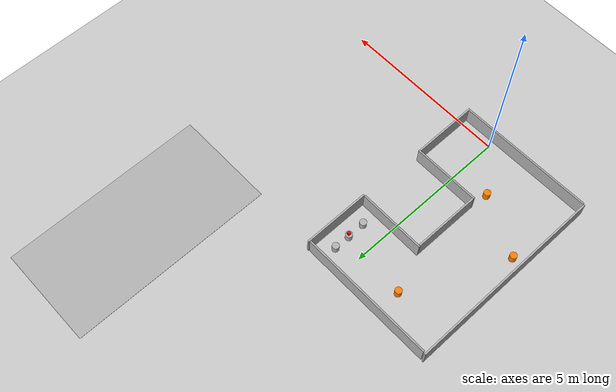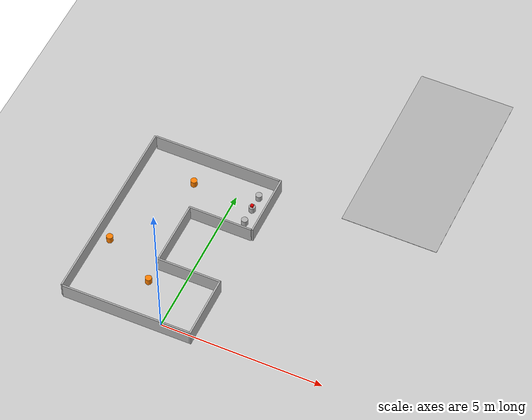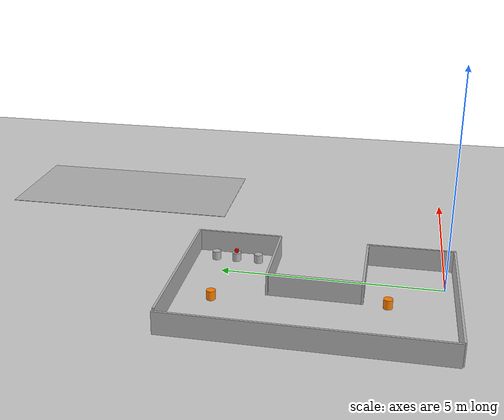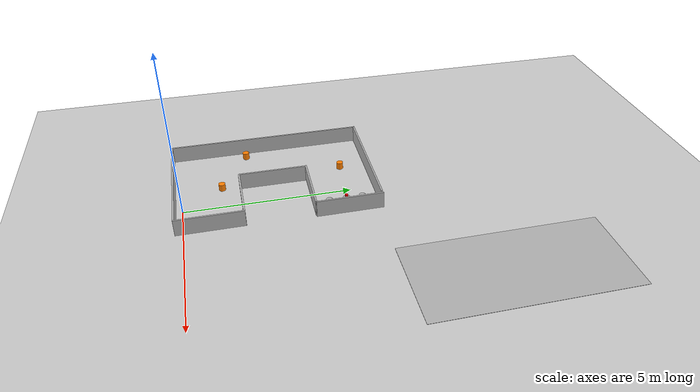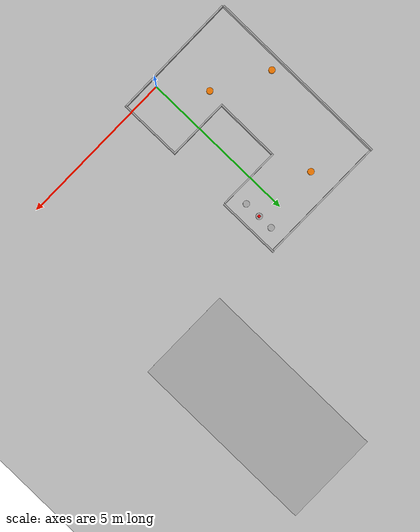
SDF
<sdf version='1.9'>
  <world name='report2_simulator'>
    <physics name='1ms' type='ignored'>
      <max_step_size>0.001</max_step_size>
      <real_time_factor>1</real_time_factor>
      <real_time_update_rate>1000</real_time_update_rate>
    </physics>
    <gravity>0 0 -9.8</gravity>
    <magnetic_field>6e-06 2.3e-05 -4.2e-05</magnetic_field>
    <atmosphere type='adiabatic'/>
    <scene>
      <ambient>0.4 0.4 0.4 1</ambient>
      <background>0.7 0.7 0.7 1</background>
      <shadows>true</shadows>
    </scene>
    <model name='ground_plane'>
      <static>true</static>
      <link name='link'>
        <collision name='collision'>
          <geometry>
            <plane>
              <normal>0 0 1</normal>
              <size>100 100</size>
            </plane>
          </geometry>
          <surface>
            <friction>
              <ode/>
            </friction>
            <bounce/>
            <contact/>
          </surface>
        </collision>
        <visual name='visual'>
          <geometry>
            <plane>
              <normal>0 0 1</normal>
              <size>15 15</size>
            </plane>
          </geometry>
          <material>
            <diffuse>0.8 0.8 0.8 1</diffuse>
            <pbr>
              <metal>
                <albedo_map>model://ground.png</albedo_map>
              </metal>
            </pbr>
          </material>
        </visual>
        <pose>0 5 0 0 -0 0</pose>
        <inertial>
          <pose>0 0 0 0 -0 0</pose>
          <mass>1</mass>
          <inertia>
            <ixx>1</ixx>
            <ixy>0</ixy>
            <ixz>0</ixz>
            <iyy>1</iyy>
            <iyz>0</iyz>
            <izz>1</izz>
          </inertia>
        </inertial>
        <enable_wind>false</enable_wind>
      </link>
      <pose>0 0 0 0 -0 0</pose>
      <self_collide>false</self_collide>
    </model>
    <model name='box'>
      <static>true</static>
      <pose>-0.920266 2.76416 0 0 -0 1.56766</pose>
      <link name='box_link'>
        <inertial>
          <inertia>
            <ixx>0.16666</ixx>
            <ixy>0</ixy>
            <ixz>0</ixz>
            <iyy>0.16666</iyy>
            <iyz>0</iyz>
            <izz>0.16666</izz>
          </inertia>
          <mass>1</mass>
          <pose>0 0 0 0 -0 0</pose>
        </inertial>
        <collision name='box_collision'>
          <geometry>
            <box>
              <size>2 0.05 1</size>
            </box>
          </geometry>
          <surface>
            <friction>
              <ode/>
            </friction>
            <bounce/>
            <contact/>
          </surface>
        </collision>
        <visual name='box_visual'>
          <geometry>
            <box>
              <size>2 0.05 1</size>
            </box>
          </geometry>
          <material>
            <ambient>0.3 0.3 0.3 1</ambient>
            <diffuse>0.7 0.7 0.7 1</diffuse>
            <specular>1 1 1 1</specular>
          </material>
        </visual>
        <pose>0 0 0 0 -0 0</pose>
        <enable_wind>false</enable_wind>
      </link>
      <static>false</static>
      <self_collide>false</self_collide>
    </model>
    <model name='box_0'>
      <static>true</static>
      <pose>0.054507 3.79134 0 0 0 -0.005035</pose>
      <link name='box_link'>
        <inertial>
          <inertia>
            <ixx>0.16666</ixx>
            <ixy>0</ixy>
            <ixz>0</ixz>
            <iyy>0.16666</iyy>
            <iyz>0</iyz>
            <izz>0.16666</izz>
          </inertia>
          <mass>1</mass>
          <pose>0 0 0 0 -0 0</pose>
        </inertial>
        <collision name='box_collision'>
          <geometry>
            <box>
              <size>2 0.05 1</size>
            </box>
          </geometry>
          <surface>
            <friction>
              <ode/>
            </friction>
            <bounce/>
            <contact/>
          </surface>
        </collision>
        <visual name='box_visual'>
          <geometry>
            <box>
              <size>2 0.05 1</size>
            </box>
          </geometry>
          <material>
            <ambient>0.3 0.3 0.3 1</ambient>
            <diffuse>0.7 0.7 0.7 1</diffuse>
            <specular>1 1 1 1</specular>
          </material>
        </visual>
        <pose>0 0 0 0 -0 0</pose>
        <enable_wind>false</enable_wind>
      </link>
      <static>false</static>
      <self_collide>false</self_collide>
    </model>
    <model name='box_1'>
      <static>true</static>
      <pose>-3.01677 2.77294 0 0 -0 1.56994</pose>
      <link name='box_link'>
        <inertial>
          <inertia>
            <ixx>0.16666</ixx>
            <ixy>0</ixy>
            <ixz>0</ixz>
            <iyy>0.16666</iyy>
            <iyz>0</iyz>
            <izz>0.16666</izz>
          </inertia>
          <mass>1</mass>
          <pose>0 0 0 0 -0 0</pose>
        </inertial>
        <collision name='box_collision'>
          <geometry>
            <box>
              <size>6 0.05 1</size>
            </box>
          </geometry>
          <surface>
            <friction>
              <ode/>
            </friction>
            <bounce/>
            <contact/>
          </surface>
        </collision>
        <visual name='box_visual'>
          <geometry>
            <box>
              <size>6 0.05 1</size>
            </box>
          </geometry>
          <material>
            <ambient>0.3 0.3 0.3 1</ambient>
            <diffuse>0.7 0.7 0.7 1</diffuse>
            <specular>1 1 1 1</specular>
          </material>
        </visual>
        <pose>0 0 0 0 -0 0</pose>
        <enable_wind>false</enable_wind>
      </link>
      <static>false</static>
      <self_collide>false</self_collide>
    </model>
    <model name='box_2'>
      <static>true</static>
      <pose>0.053346 1.73939 0 0 -0 0.000557</pose>
      <link name='box_link'>
        <inertial>
          <inertia>
            <ixx>0.16666</ixx>
            <ixy>0</ixy>
            <ixz>0</ixz>
            <iyy>0.16666</iyy>
            <iyz>0</iyz>
            <izz>0.16666</izz>
          </inertia>
          <mass>1</mass>
          <pose>0 0 0 0 -0 0</pose>
        </inertial>
        <collision name='box_collision'>
          <geometry>
            <box>
              <size>2 0.05 1</size>
            </box>
          </geometry>
          <surface>
            <friction>
              <ode/>
            </friction>
            <bounce/>
            <contact/>
          </surface>
        </collision>
        <visual name='box_visual'>
          <geometry>
            <box>
              <size>2 0.05 1</size>
            </box>
          </geometry>
          <material>
            <ambient>0.3 0.3 0.3 1</ambient>
            <diffuse>0.7 0.7 0.7 1</diffuse>
            <specular>1 1 1 1</specular>
          </material>
        </visual>
        <pose>0 0 0 0 -0 0</pose>
        <enable_wind>false</enable_wind>
      </link>
      <static>false</static>
      <self_collide>false</self_collide>
    </model>
    <model name='box_3'>
      <static>true</static>
      <pose>-0.989402 -0.226338 0 0 -0 0.005638</pose>
      <link name='box_link'>
        <inertial>
          <inertia>
            <ixx>0.16666</ixx>
            <ixy>0</ixy>
            <ixz>0</ixz>
            <iyy>0.16666</iyy>
            <iyz>0</iyz>
            <izz>0.16666</izz>
          </inertia>
          <mass>1</mass>
          <pose>0 0 0 0 -0 0</pose>
        </inertial>
        <collision name='box_collision'>
          <geometry>
            <box>
              <size>4 0.05 1</size>
            </box>
          </geometry>
          <surface>
            <friction>
              <ode/>
            </friction>
            <bounce/>
            <contact/>
          </surface>
        </collision>
        <visual name='box_visual'>
          <geometry>
            <box>
              <size>4 0.05 1</size>
            </box>
          </geometry>
          <material>
            <ambient>0.3 0.3 0.3 1</ambient>
            <diffuse>0.7 0.7 0.7 1</diffuse>
            <specular>1 1 1 1</specular>
          </material>
        </visual>
        <pose>0 0 0 0 -0 0</pose>
        <enable_wind>false</enable_wind>
      </link>
      <static>false</static>
      <self_collide>false</self_collide>
    </model>
    <model name='box_4'>
      <static>true</static>
      <pose>-0.954706 5.74291 0.032371 -0.004997 -0.001703 -3.14055</pose>
      <link name='box_link'>
        <inertial>
          <inertia>
            <ixx>0.16666</ixx>
            <ixy>0</ixy>
            <ixz>0</ixz>
            <iyy>0.16666</iyy>
            <iyz>0</iyz>
            <izz>0.16666</izz>
          </inertia>
          <mass>1</mass>
          <pose>0 0 0 0 -0 0</pose>
        </inertial>
        <collision name='box_collision'>
          <geometry>
            <box>
              <size>4 0.05 1</size>
            </box>
          </geometry>
          <surface>
            <friction>
              <ode/>
            </friction>
            <bounce/>
            <contact/>
          </surface>
        </collision>
        <visual name='box_visual'>
          <geometry>
            <box>
              <size>4 0.05 1</size>
            </box>
          </geometry>
          <material>
            <ambient>0.3 0.3 0.3 1</ambient>
            <diffuse>0.7 0.7 0.7 1</diffuse>
            <specular>1 1 1 1</specular>
          </material>
        </visual>
        <pose>0 0 0 0 -0 0</pose>
        <enable_wind>false</enable_wind>
      </link>
      <static>false</static>
      <self_collide>false</self_collide>
    </model>
    <model name='box_5'>
      <static>true</static>
      <pose>1.0853 4.78664 0 0 -0 1.57301</pose>
      <link name='box_link'>
        <inertial>
          <inertia>
            <ixx>0.16666</ixx>
            <ixy>0</ixy>
            <ixz>0</ixz>
            <iyy>0.16666</iyy>
            <iyz>0</iyz>
            <izz>0.16666</izz>
          </inertia>
          <mass>1</mass>
          <pose>0 0 0 0 -0 0</pose>
        </inertial>
        <collision name='box_collision'>
          <geometry>
            <box>
              <size>2 0.05 1</size>
            </box>
          </geometry>
          <surface>
            <friction>
              <ode/>
            </friction>
            <bounce/>
            <contact/>
          </surface>
        </collision>
        <visual name='box_visual'>
          <geometry>
            <box>
              <size>2 0.05 1</size>
            </box>
          </geometry>
          <material>
            <ambient>0.3 0.3 0.3 1</ambient>
            <diffuse>0.7 0.7 0.7 1</diffuse>
            <specular>1 1 1 1</specular>
          </material>
        </visual>
        <pose>0 0 0 0 -0 0</pose>
        <enable_wind>false</enable_wind>
      </link>
      <static>false</static>
      <self_collide>false</self_collide>
    </model>
    <model name='box_6'>
      <static>true</static>
      <pose>1.03218 0.757696 0 0 0 -1.56731</pose>
      <link name='box_link'>
        <inertial>
          <inertia>
            <ixx>0.16666</ixx>
            <ixy>0</ixy>
            <ixz>0</ixz>
            <iyy>0.16666</iyy>
            <iyz>0</iyz>
            <izz>0.16666</izz>
          </inertia>
          <mass>1</mass>
          <pose>0 0 0 0 -0 0</pose>
        </inertial>
        <collision name='box_collision'>
          <geometry>
            <box>
              <size>2 0.05 1</size>
            </box>
          </geometry>
          <surface>
            <friction>
              <ode/>
            </friction>
            <bounce/>
            <contact/>
          </surface>
        </collision>
        <visual name='box_visual'>
          <geometry>
            <box>
              <size>2 0.05 1</size>
            </box>
          </geometry>
          <material>
            <ambient>0.3 0.3 0.3 1</ambient>
            <diffuse>0.7 0.7 0.7 1</diffuse>
            <specular>1 1 1 1</specular>
          </material>
        </visual>
        <pose>0 0 0 0 -0 0</pose>
        <enable_wind>false</enable_wind>
      </link>
      <static>false</static>
      <self_collide>false</self_collide>
    </model>
    <model name='cylinder'>
      <static>true</static>
      <pose>0.618932 5.24233 0.1 0 -0 0</pose>
      <link name='cylinder_link'>
        <inertial>
          <inertia>
            <ixx>0.14580000000000001</ixx>
            <ixy>0</ixy>
            <ixz>0</ixz>
            <iyy>0.14580000000000001</iyy>
            <iyz>0</iyz>
            <izz>0.125</izz>
          </inertia>
          <mass>1</mass>
          <pose>0 0 0 0 -0 0</pose>
        </inertial>
        <collision name='cylinder_collision'>
          <geometry>
            <cylinder>
              <radius>0.10000000000000001</radius>
              <length>0.20000000000000001</length>
            </cylinder>
          </geometry>
          <surface>
            <friction>
              <ode/>
            </friction>
            <bounce/>
            <contact/>
          </surface>
        </collision>
        <visual name='cylinder_visual'>
          <geometry>
            <cylinder>
              <radius>0.10000000000000001</radius>
              <length>0.20000000000000001</length>
            </cylinder>
          </geometry>
          <material>
            <ambient>0.3 0.3 0.3 1</ambient>
            <diffuse>0.7 0.7 0.7 1</diffuse>
            <specular>1 1 1 1</specular>
          </material>
        </visual>
        <pose>0 0 0 0 -0 0</pose>
        <enable_wind>false</enable_wind>
      </link>
      <self_collide>false</self_collide>
    </model>
    <model name='cylinder_0'>
      <static>true</static>
      <pose>0.621926 4.7638 0.1 0 -0 0</pose>
      <link name='cylinder_link'>
        <inertial>
          <inertia>
            <ixx>0.14580000000000001</ixx>
            <ixy>0</ixy>
            <ixz>0</ixz>
            <iyy>0.14580000000000001</iyy>
            <iyz>0</iyz>
            <izz>0.125</izz>
          </inertia>
          <mass>1</mass>
          <pose>0 0 0 0 -0 0</pose>
        </inertial>
        <collision name='cylinder_collision'>
          <geometry>
            <cylinder>
              <radius>0.10000000000000001</radius>
              <length>0.20000000000000001</length>
            </cylinder>
          </geometry>
          <surface>
            <friction>
              <ode/>
            </friction>
            <bounce/>
            <contact/>
          </surface>
        </collision>
        <visual name='cylinder_visual'>
          <geometry>
            <cylinder>
              <radius>0.10000000000000001</radius>
              <length>0.20000000000000001</length>
            </cylinder>
          </geometry>
          <material>
            <ambient>0.3 0.3 0.3 1</ambient>
            <diffuse>0.7 0.7 0.7 1</diffuse>
            <specular>1 1 1 1</specular>
          </material>
        </visual>
        <pose>0 0 0 0 -0 0</pose>
        <enable_wind>false</enable_wind>
      </link>
      <self_collide>false</self_collide>
    </model>
    <model name='cylinder_1'>
      <static>true</static>
      <pose>0.624562 4.24332 0.1 0 -0 0</pose>
      <link name='cylinder_link'>
        <inertial>
          <inertia>
            <ixx>0.14580000000000001</ixx>
            <ixy>0</ixy>
            <ixz>0</ixz>
            <iyy>0.14580000000000001</iyy>
            <iyz>0</iyz>
            <izz>0.125</izz>
          </inertia>
          <mass>1</mass>
          <pose>0 0 0 0 -0 0</pose>
        </inertial>
        <collision name='cylinder_collision'>
          <geometry>
            <cylinder>
              <radius>0.10000000000000001</radius>
              <length>0.20000000000000001</length>
            </cylinder>
          </geometry>
          <surface>
            <friction>
              <ode/>
            </friction>
            <bounce/>
            <contact/>
          </surface>
        </collision>
        <visual name='cylinder_visual'>
          <geometry>
            <cylinder>
              <radius>0.10000000000000001</radius>
              <length>0.20000000000000001</length>
            </cylinder>
          </geometry>
          <material>
            <ambient>0.3 0.3 0.3 1</ambient>
            <diffuse>0.7 0.7 0.7 1</diffuse>
            <specular>1 1 1 1</specular>
          </material>
        </visual>
        <pose>0 0 0 0 -0 0</pose>
        <enable_wind>false</enable_wind>
      </link>
      <self_collide>false</self_collide>
    </model>
    <model name='target'>
      <pose>0.624483 4.7639 0.24 0 -0 0</pose>
      <link name='box_link'>
        <inertial>
          <inertia>
            <ixx>0.16666</ixx>
            <ixy>0</ixy>
            <ixz>0</ixz>
            <iyy>0.16666</iyy>
            <iyz>0</iyz>
            <izz>0.16666</izz>
          </inertia>
          <mass>1</mass>
          <pose>0 0 0 0 -0 0</pose>
        </inertial>
        <collision name='box_collision'>
          <geometry>
            <box>
              <size>0.08 0.08 0.08</size>
            </box>
          </geometry>
          <surface>
            <friction>
              <ode/>
            </friction>
            <bounce/>
            <contact/>
          </surface>
        </collision>
        <visual name='box_visual'>
          <geometry>
            <box>
              <size>0.08 0.08 0.08</size>
            </box>
          </geometry>
          <material>
            <ambient>1 0 0 1</ambient>
            <diffuse>1 0 0 1</diffuse>
            <specular>1 1 1 1</specular>
          </material>
        </visual>
        <pose>0 0 0 0 -0 0</pose>
        <enable_wind>false</enable_wind>
      </link>
      <static>false</static>
      <self_collide>false</self_collide>
    </model>
    <model name='obstable_1'>
      <pose>-1.35172 4.93712 0 0 -0 0</pose>
      <link name='cylinder_link'>
        <inertial>
          <inertia>
            <ixx>0.14580000000000001</ixx>
            <ixy>0</ixy>
            <ixz>0</ixz>
            <iyy>0.14580000000000001</iyy>
            <iyz>0</iyz>
            <izz>0.125</izz>
          </inertia>
          <mass>1</mass>
          <pose>0 0 0 0 -0 0</pose>
        </inertial>
        <collision name='cylinder_collision'>
          <geometry>
            <cylinder>
              <radius>0.10000000000000001</radius>
              <length>0.40000000000000002</length>
            </cylinder>
          </geometry>
          <surface>
            <friction>
              <ode/>
            </friction>
            <bounce/>
            <contact/>
          </surface>
        </collision>
        <visual name='cylinder_visual'>
          <geometry>
            <cylinder>
              <radius>0.10000000000000001</radius>
              <length>0.40000000000000002</length>
            </cylinder>
          </geometry>
          <material>
            <ambient>1 0.5 0 1</ambient>
            <diffuse>1 0.5 0 1</diffuse>
            <specular>1 1 1 1</specular>
          </material>
        </visual>
        <pose>0 0 0 0 -0 0</pose>
        <enable_wind>false</enable_wind>
      </link>
      <static>false</static>
      <self_collide>false</self_collide>
    </model>
    <model name='obstable_2'>
      <pose>-2.67614 2.07183 0 0 -0 0</pose>
      <link name='cylinder_link'>
        <inertial>
          <inertia>
            <ixx>0.14580000000000001</ixx>
            <ixy>0</ixy>
            <ixz>0</ixz>
            <iyy>0.14580000000000001</iyy>
            <iyz>0</iyz>
            <izz>0.125</izz>
          </inertia>
          <mass>1</mass>
          <pose>0 0 0 0 -0 0</pose>
        </inertial>
        <collision name='cylinder_collision'>
          <geometry>
            <cylinder>
              <radius>0.10000000000000001</radius>
              <length>0.40000000000000002</length>
            </cylinder>
          </geometry>
          <surface>
            <friction>
              <ode/>
            </friction>
            <bounce/>
            <contact/>
          </surface>
        </collision>
        <visual name='cylinder_visual'>
          <geometry>
            <cylinder>
              <radius>0.10000000000000001</radius>
              <length>0.40000000000000002</length>
            </cylinder>
          </geometry>
          <material>
            <ambient>1 0.5 0 1</ambient>
            <diffuse>1 0.5 0 1</diffuse>
            <specular>1 1 1 1</specular>
          </material>
        </visual>
        <pose>0 0 0 0 -0 0</pose>
        <enable_wind>false</enable_wind>
      </link>
      <static>false</static>
      <self_collide>false</self_collide>
    </model>
    <model name='obstable_3'>
      <pose>-0.98722 1.20006 0 0 -0 0</pose>
      <link name='cylinder_link'>
        <inertial>
          <inertia>
            <ixx>0.14580000000000001</ixx>
            <ixy>0</ixy>
            <ixz>0</ixz>
            <iyy>0.14580000000000001</iyy>
            <iyz>0</iyz>
            <izz>0.125</izz>
          </inertia>
          <mass>1</mass>
          <pose>0 0 0 0 -0 0</pose>
        </inertial>
        <collision name='cylinder_collision'>
          <geometry>
            <cylinder>
              <radius>0.10000000000000001</radius>
              <length>0.40000000000000002</length>
            </cylinder>
          </geometry>
          <surface>
            <friction>
              <ode/>
            </friction>
            <bounce/>
            <contact/>
          </surface>
        </collision>
        <visual name='cylinder_visual'>
          <geometry>
            <cylinder>
              <radius>0.10000000000000001</radius>
              <length>0.40000000000000002</length>
            </cylinder>
          </geometry>
          <material>
            <ambient>1 0.5 0 1</ambient>
            <diffuse>1 0.5 0 1</diffuse>
            <specular>1 1 1 1</specular>
          </material>
        </visual>
        <pose>0 0 0 0 -0 0</pose>
        <enable_wind>false</enable_wind>
      </link>
      <static>false</static>
      <self_collide>false</self_collide>
    </model>
    <model name='logo'>
      <pose>4.62515 3.59067 0.01 0 -0 0</pose>
      <link name='box_link'>
        <inertial>
          <inertia>
            <ixx>0.16666</ixx>
            <ixy>0</ixy>
            <ixz>0</ixz>
            <iyy>0.16666</iyy>
            <iyz>0</iyz>
            <izz>0.16666</izz>
          </inertia>
          <mass>1</mass>
          <pose>0 0 0 0 -0 0</pose>
        </inertial>
        <collision name='box_collision'>
          <geometry>
            <box>
              <size>3 6 0.01</size>
            </box>
          </geometry>
          <surface>
            <friction>
              <ode/>
            </friction>
            <bounce/>
            <contact/>
          </surface>
        </collision>
        <visual name='box_visual'>
          <geometry>
            <box>
              <size>3 6 0.01</size>
            </box>
          </geometry>
          <material>
            <diffuse>0.7 0.7 0.7 1</diffuse>
            <pbr>
              <metal>
                <albedo_map>model://logo.jpg</albedo_map>
              </metal>
            </pbr>
          </material>
        </visual>
        <pose>0 5 0 0 -0 0</pose>
        <enable_wind>false</enable_wind>
      </link>
      <static>false</static>
      <self_collide>false</self_collide>
    </model>
    <light name='sun' type='directional'>
      <pose>0 0 10 0 -0 0</pose>
      <cast_shadows>true</cast_shadows>
      <intensity>1</intensity>
      <direction>-0.5 0.1 -0.9</direction>
      <diffuse>0.8 0.8 0.8 1</diffuse>
      <specular>0.2 0.2 0.2 1</specular>
      <attenuation>
        <range>1000</range>
        <linear>0.01</linear>
        <constant>0.90000000000000002</constant>
        <quadratic>0.001</quadratic>
      </attenuation>
      <spot>
        <inner_angle>0</inner_angle>
        <outer_angle>0</outer_angle>
        <falloff>0</falloff>
      </spot>
    </light>
  </world>
</sdf>
